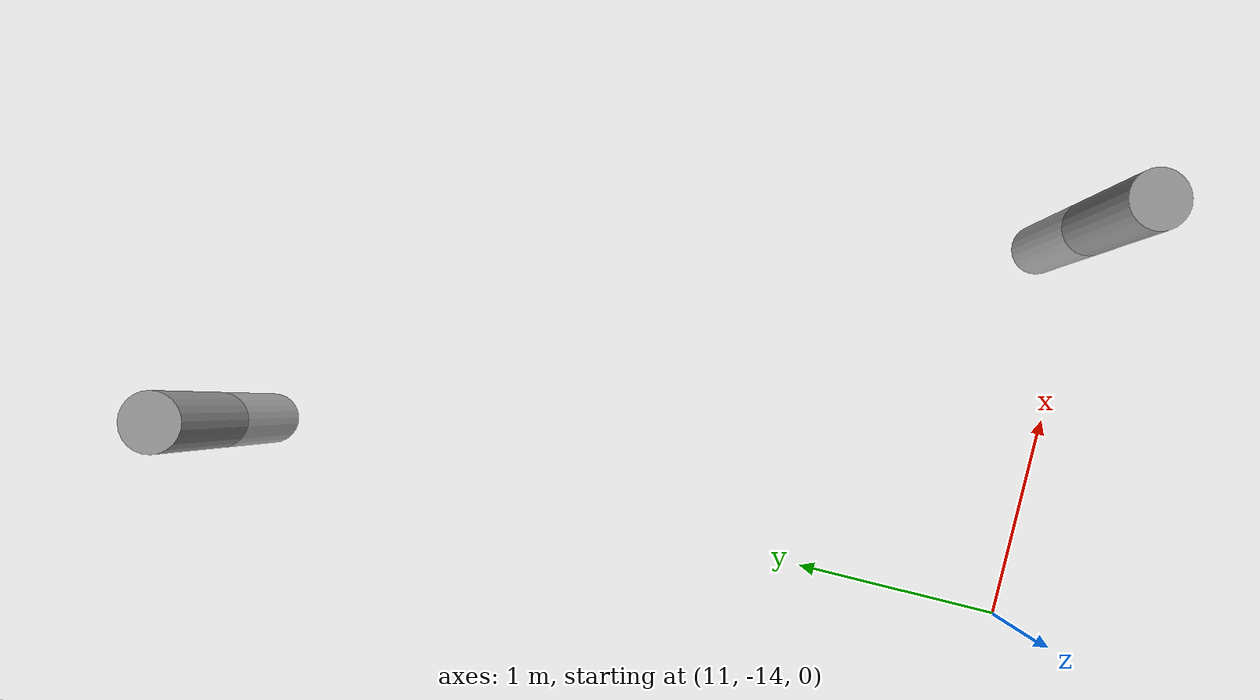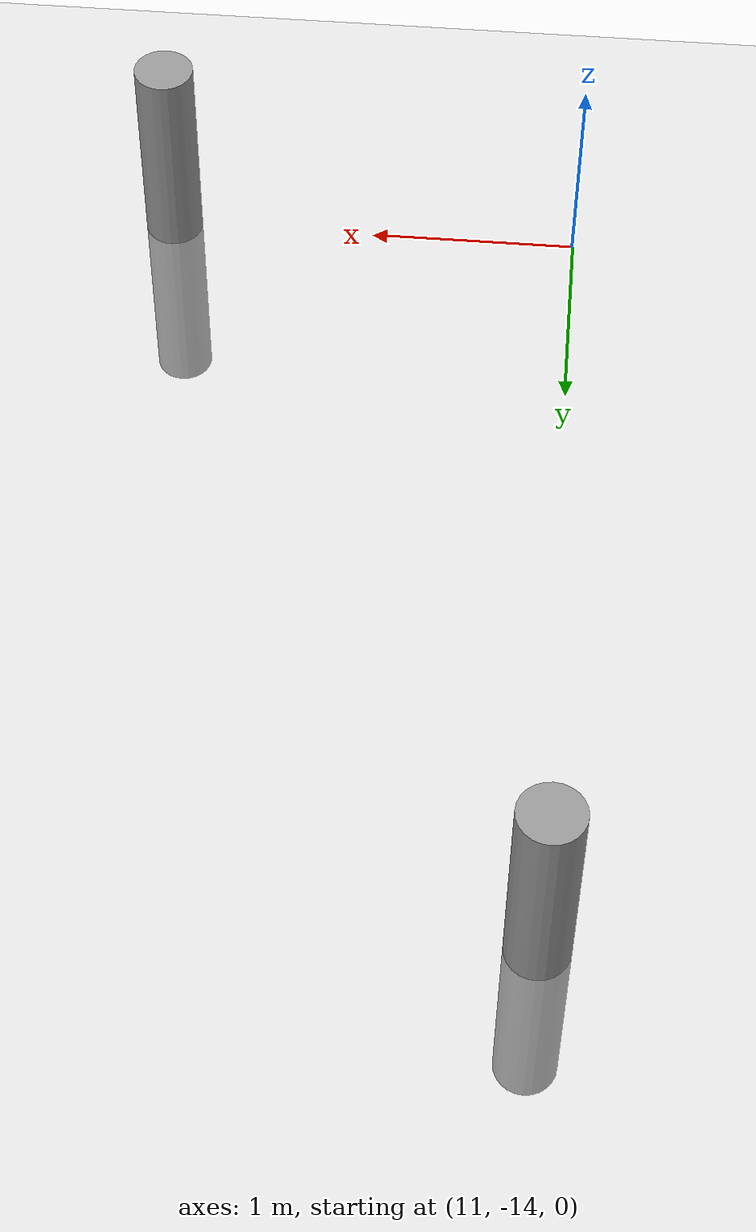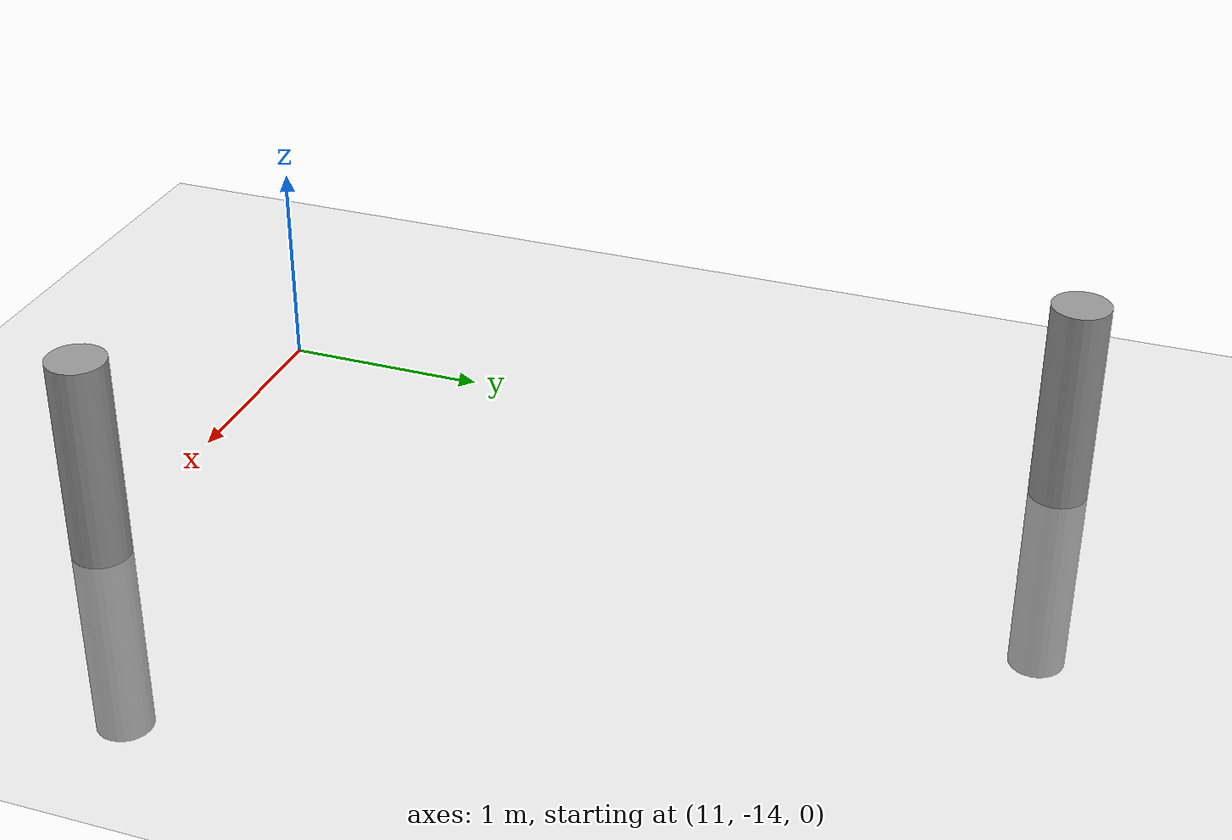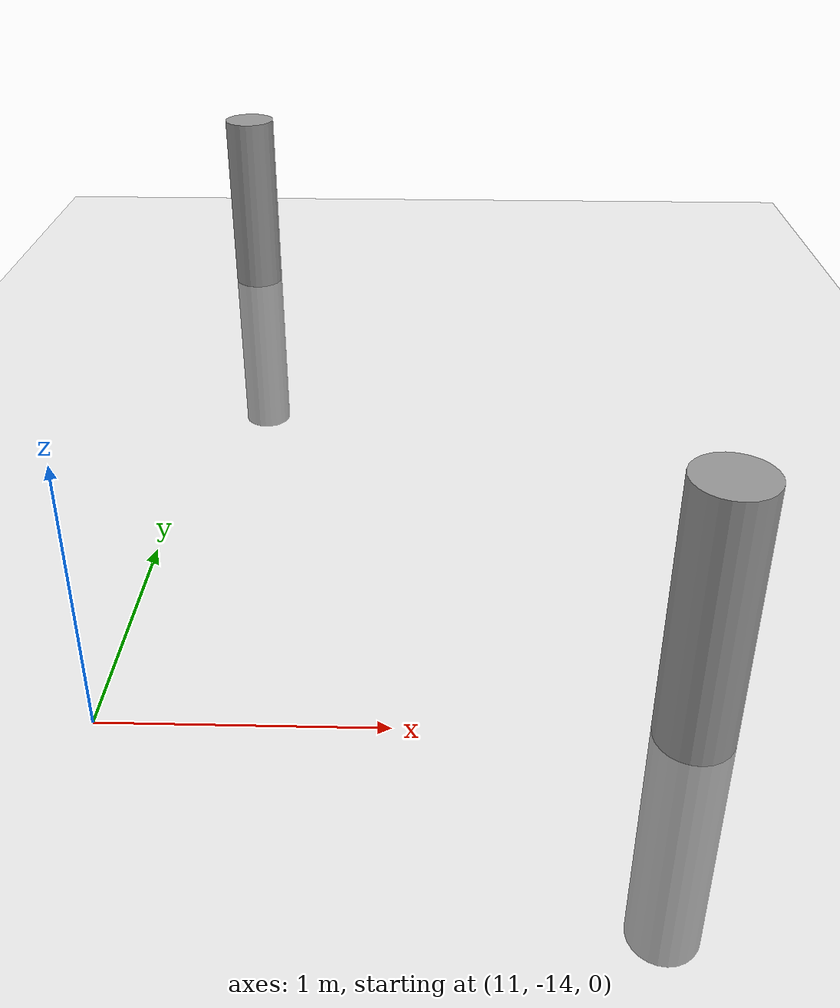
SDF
<sdf version="1.6">
 <world name="default">
  <model name="ground_plane">
   <static>1</static>
   <link name="link">
    <collision name="collision">
     <geometry><plane><normal>0 0 1</normal><size>100 100</size></plane></geometry>
     <surface><friction><ode><mu>100</mu><mu2>50</mu2></ode></friction></surface>
    </collision>
    <visual name="visual">
     <cast_shadows>0</cast_shadows>
     <geometry><plane><normal>0 0 1</normal><size>100 100</size></plane></geometry>
     <material>
      <script><uri>file://media/materials/scripts/gazebo.material</uri><name>Gazebo/Grey</name></script>
     </material>
    </visual>
   </link>
  </model>
  <model name="my_cylinder014_clone_29">
   <pose>11 -10 0 0 -0 0</pose>
   <link name="my_cylinder014::link">
    <inertial>
     <mass>1</mass>
     <inertia><ixx>0.145833</ixx><ixy>0</ixy><ixz>0</ixz><iyy>0.145833</iyy><iyz>0</iyz><izz>0.125</izz></inertia>
    </inertial>
    <visual name="visual">
     <geometry><cylinder><radius>0.14</radius><length>2</length></cylinder></geometry>
     <material>
      <script><name>Gazebo/Grey</name><uri>file://media/materials/scripts/gazebo.material</uri></script>
      <ambient>0.3 0.3 0.3 1</ambient>
      <diffuse>0.7 0.7 0.7 1</diffuse>
      <specular>1 0.01 0.01 1</specular>
      <emissive>0 0 0 1</emissive>
      <shader type="vertex"><normal_map>__default__</normal_map></shader>
     </material>
    </visual>
    <collision name="collision">
     <geometry><cylinder><radius>0.14</radius><length>2</length></cylinder></geometry>
     <surface>
      <friction>
       <ode><mu>1</mu><mu2>1</mu2><fdir1>0 0 0</fdir1><slip1>0</slip1><slip2>0</slip2></ode>
       <torsional>
        <coefficient>1</coefficient>
        <patch_radius>0</patch_radius>
        <surface_radius>0</surface_radius>
        <use_patch_radius>1</use_patch_radius>
        <ode><slip>0</slip></ode>
       </torsional>
      </friction>
      <bounce><restitution_coefficient>0</restitution_coefficient><threshold>1e+06</threshold></bounce>
      <contact>
       <collide_without_contact>0</collide_without_contact>
       <collide_without_contact_bitmask>1</collide_without_contact_bitmask>
       <collide_bitmask>1</collide_bitmask>
       <ode>
        <soft_cfm>0</soft_cfm>
        <soft_erp>0.2</soft_erp>
        <kp>1e+13</kp>
        <kd>1</kd>
        <max_vel>0.01</max_vel>
        <min_depth>0</min_depth>
       </ode>
       <bullet>
        <split_impulse>1</split_impulse>
        <split_impulse_penetration_threshold>-0.01</split_impulse_penetration_threshold>
        <soft_cfm>0</soft_cfm>
        <soft_erp>0.2</soft_erp>
        <kp>1e+13</kp>
        <kd>1</kd>
       </bullet>
      </contact>
     </surface>
    </collision>
   </link>
   <static>1</static>
  </model>
  <model name="my_cylinder014_clone_14">
   <pose>13 -14 0 0 -0 0</pose>
   <link name="my_cylinder014::link">
    <inertial>
     <mass>1</mass>
     <inertia><ixx>0.145833</ixx><ixy>0</ixy><ixz>0</ixz><iyy>0.145833</iyy><iyz>0</iyz><izz>0.125</izz></inertia>
    </inertial>
    <visual name="visual">
     <geometry><cylinder><radius>0.14</radius><length>2</length></cylinder></geometry>
     <material>
      <script><name>Gazebo/Grey</name><uri>file://media/materials/scripts/gazebo.material</uri></script>
      <ambient>0.3 0.3 0.3 1</ambient>
      <diffuse>0.7 0.7 0.7 1</diffuse>
      <specular>1 0.01 0.01 1</specular>
      <emissive>0 0 0 1</emissive>
      <shader type="vertex"><normal_map>__default__</normal_map></shader>
     </material>
    </visual>
    <collision name="collision">
     <geometry><cylinder><radius>0.14</radius><length>2</length></cylinder></geometry>
     <surface>
      <friction>
       <ode><mu>1</mu><mu2>1</mu2><fdir1>0 0 0</fdir1><slip1>0</slip1><slip2>0</slip2></ode>
       <torsional>
        <coefficient>1</coefficient>
        <patch_radius>0</patch_radius>
        <surface_radius>0</surface_radius>
        <use_patch_radius>1</use_patch_radius>
        <ode><slip>0</slip></ode>
       </torsional>
      </friction>
      <bounce><restitution_coefficient>0</restitution_coefficient><threshold>1e+06</threshold></bounce>
      <contact>
       <collide_without_contact>0</collide_without_contact>
       <collide_without_contact_bitmask>1</collide_without_contact_bitmask>
       <collide_bitmask>1</collide_bitmask>
       <ode>
        <soft_cfm>0</soft_cfm>
        <soft_erp>0.2</soft_erp>
        <kp>1e+13</kp>
        <kd>1</kd>
        <max_vel>0.01</max_vel>
        <min_depth>0</min_depth>
       </ode>
       <bullet>
        <split_impulse>1</split_impulse>
        <split_impulse_penetration_threshold>-0.01</split_impulse_penetration_threshold>
        <soft_cfm>0</soft_cfm>
        <soft_erp>0.2</soft_erp>
        <kp>1e+13</kp>
        <kd>1</kd>
       </bullet>
      </contact>
     </surface>
    </collision>
   </link>
   <static>1</static>
  </model>
  <model name="my_cylinder014_clone_14">
   <pose>13 -14 0 0 -0 0</pose>
   <link name="my_cylinder014::link">
    <inertial>
     <mass>1</mass>
     <inertia><ixx>0.145833</ixx><ixy>0</ixy><ixz>0</ixz><iyy>0.145833</iyy><iyz>0</iyz><izz>0.125</izz></inertia>
    </inertial>
    <visual name="visual">
     <geometry><cylinder><radius>0.14</radius><length>2</length></cylinder></geometry>
     <material>
      <script><name>Gazebo/Grey</name><uri>file://media/materials/scripts/gazebo.material</uri></script>
      <ambient>0.3 0.3 0.3 1</ambient>
      <diffuse>0.7 0.7 0.7 1</diffuse>
      <specular>1 0.01 0.01 1</specular>
      <emissive>0 0 0 1</emissive>
      <shader type="vertex"><normal_map>__default__</normal_map></shader>
     </material>
    </visual>
    <collision name="collision">
     <geometry><cylinder><radius>0.14</radius><length>2</length></cylinder></geometry>
     <surface>
      <friction>
       <ode><mu>1</mu><mu2>1</mu2><fdir1>0 0 0</fdir1><slip1>0</slip1><slip2>0</slip2></ode>
       <torsional>
        <coefficient>1</coefficient>
        <patch_radius>0</patch_radius>
        <surface_radius>0</surface_radius>
        <use_patch_radius>1</use_patch_radius>
        <ode><slip>0</slip></ode>
       </torsional>
      </friction>
      <bounce><restitution_coefficient>0</restitution_coefficient><threshold>1e+06</threshold></bounce>
      <contact>
       <collide_without_contact>0</collide_without_contact>
       <collide_without_contact_bitmask>1</collide_without_contact_bitmask>
       <collide_bitmask>1</collide_bitmask>
       <ode>
        <soft_cfm>0</soft_cfm>
        <soft_erp>0.2</soft_erp>
        <kp>1e+13</kp>
        <kd>1</kd>
        <max_vel>0.01</max_vel>
        <min_depth>0</min_depth>
       </ode>
       <bullet>
        <split_impulse>1</split_impulse>
        <split_impulse_penetration_threshold>-0.01</split_impulse_penetration_threshold>
        <soft_cfm>0</soft_cfm>
        <soft_erp>0.2</soft_erp>
        <kp>1e+13</kp>
        <kd>1</kd>
       </bullet>
      </contact>
     </surface>
    </collision>
   </link>
   <static>1</static>
  </model>
 </world>
</sdf>
